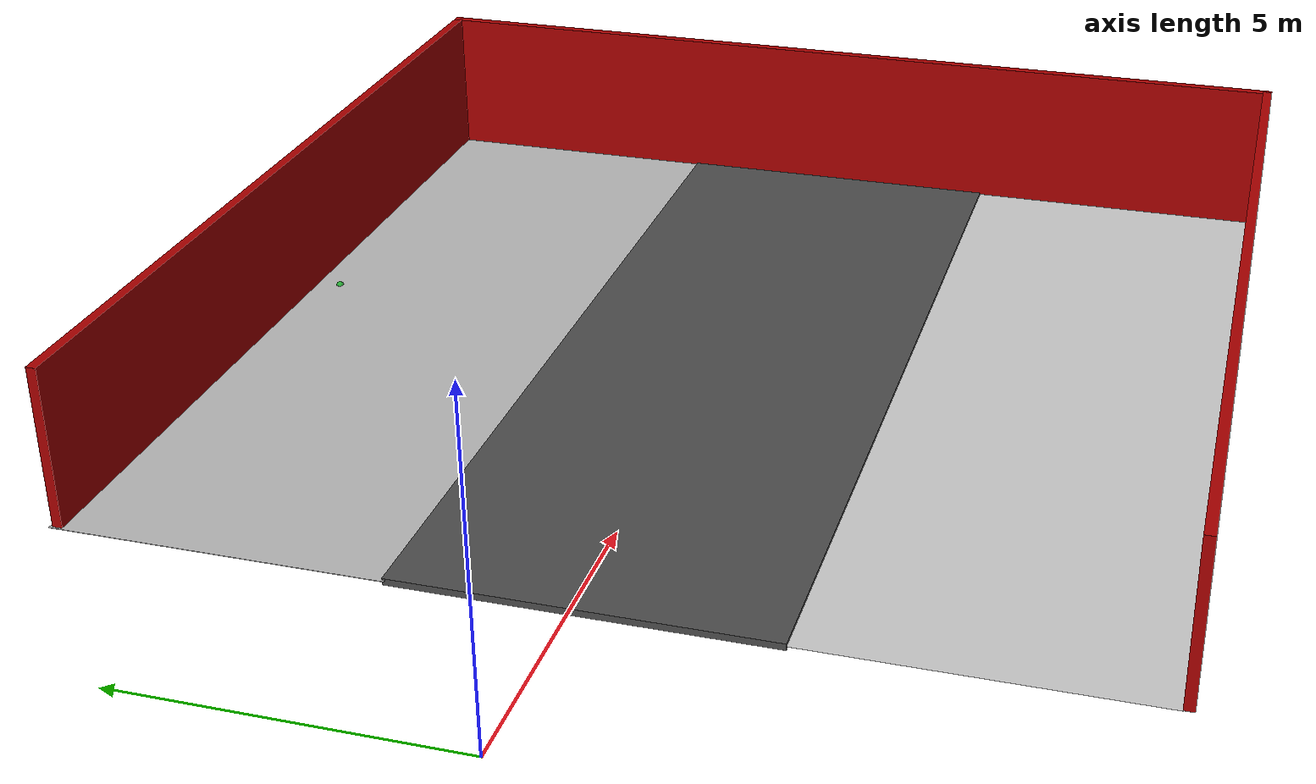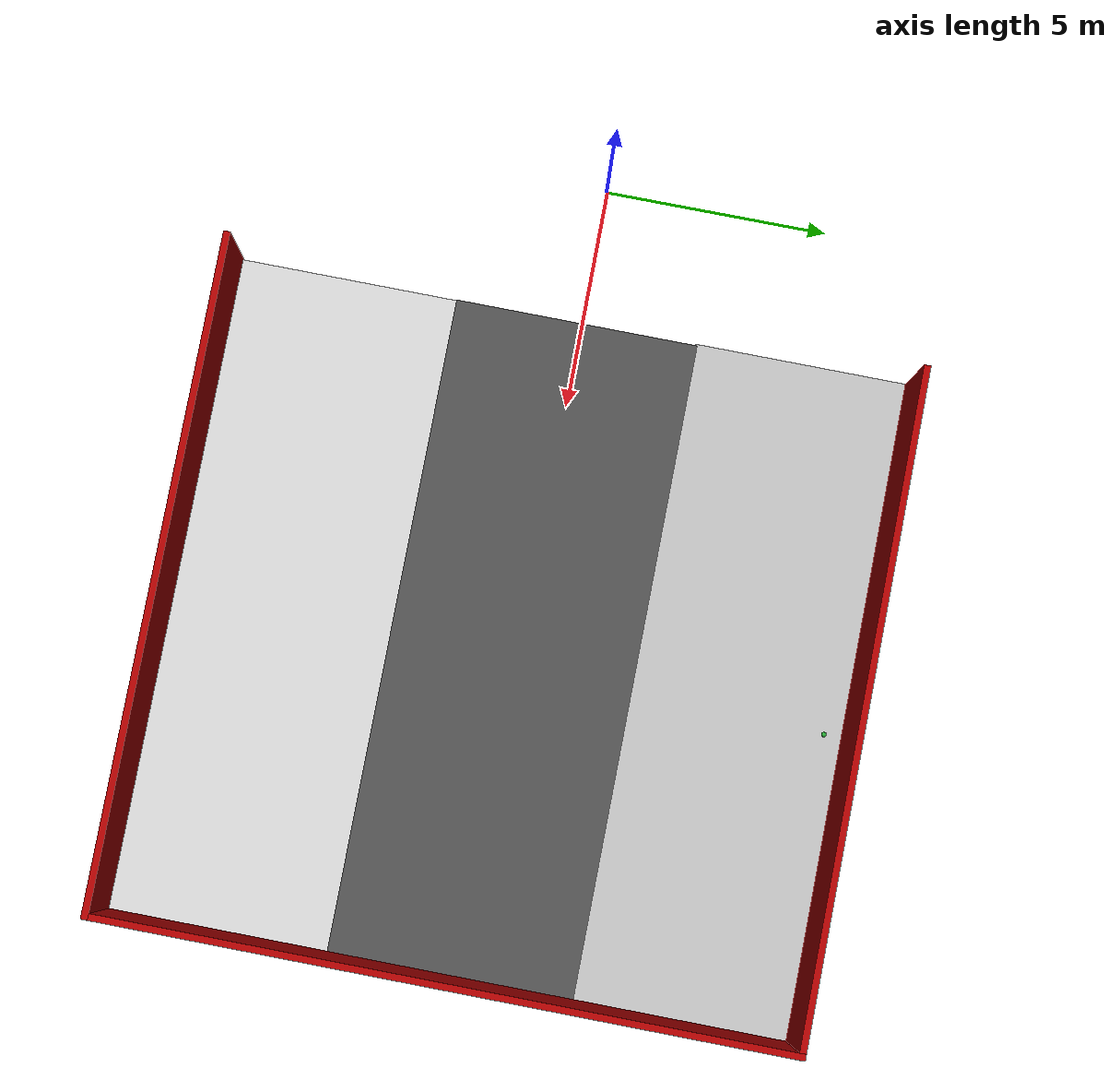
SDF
<sdf version="1.7">
 <world name="default">
  <light name="sun" type="directional">
   <pose>0 0 10 0 -0 0</pose>
   <diffuse>0.8 0.8 0.8 1</diffuse>
   <specular>0.2 0.2 0.2 1</specular>
   <attenuation>
    <range>1000</range>
    <constant>0.9</constant>
    <linear>0.01</linear>
    <quadratic>0.001</quadratic>
   </attenuation>
   <direction>-0.5 0.1 -0.9</direction>
   <spot><inner_angle>0</inner_angle><outer_angle>0</outer_angle><falloff>0</falloff></spot>
  </light>
  <gravity>0 0 -9.8</gravity>
  <magnetic_field>6e-06 2.3e-05 -4.2e-05</magnetic_field>
  <atmosphere type="adiabatic"/>
  <physics type="ode">
   <max_step_size>0.001</max_step_size>
   <real_time_factor>1</real_time_factor>
   <real_time_update_rate>1000</real_time_update_rate>
  </physics>
  <scene><ambient>0.4 0.4 0.4 1</ambient><background>0.7 0.7 0.7 1</background><shadows>1</shadows></scene>
  <spherical_coordinates>
   <surface_model>EARTH_WGS84</surface_model>
   <latitude_deg>0</latitude_deg>
   <longitude_deg>0</longitude_deg>
   <elevation>0</elevation>
   <heading_deg>0</heading_deg>
  </spherical_coordinates>
  <model name="asphalt_plane">
   <static>1</static>
   <link name="link">
    <collision name="collision"><geometry><box><size>14.9457 5.52228 0.1</size></box></geometry></collision>
    <visual name="visual">
     <cast_shadows>0</cast_shadows>
     <geometry><box><size>14.9457 5.52228 0.1</size></box></geometry>
     <material>
      <script>
       <uri>model://asphalt_plane/materials/scripts</uri>
       <uri>model://asphalt_plane/materials/textures</uri>
       <name>vrc/asphalt</name>
      </script>
     </material>
    </visual>
   </link>
   <pose>10.5518 -0.123569 -0.026377 0 -0 0</pose>
  </model>
  <model name="parking_lot">
   <static>1</static>
   <link name="link">
    <collision name="collision">
     <geometry><plane><normal>0 0 1</normal><size>15 5</size></plane></geometry>
     <surface><friction><ode><mu>100</mu><mu2>50</mu2></ode></friction></surface>
    </collision>
    <visual name="visual">
     <cast_shadows>0</cast_shadows>
     <geometry><plane><normal>0 0 1</normal><size>15 5</size></plane></geometry>
     <material>
      <script>
       <uri>model://parking_lot/materials/scripts</uri>
       <uri>model://parking_lot/materials/textures/</uri>
       <name>parking_lot/Image</name>
      </script>
     </material>
    </visual>
   </link>
   <pose>10.5861 -5.31981 0 0 -0 0</pose>
  </model>
  <model name="parking_lot_0">
   <static>1</static>
   <link name="link">
    <collision name="collision">
     <geometry><plane><normal>0 0 1</normal><size>15 5</size></plane></geometry>
     <surface><friction><ode><mu>100</mu><mu2>50</mu2></ode></friction></surface>
    </collision>
    <visual name="visual">
     <cast_shadows>0</cast_shadows>
     <geometry><plane><normal>0 0 1</normal><size>15 5</size></plane></geometry>
     <material>
      <script>
       <uri>model://parking_lot/materials/scripts</uri>
       <uri>model://parking_lot/materials/textures/</uri>
       <name>parking_lot/Image</name>
      </script>
     </material>
    </visual>
   </link>
   <pose>10.5402 5.08892 0 0 -0 0</pose>
  </model>
  <model name="redwalls">
   <pose>9.03331 -0.20329 0 0 -0 0</pose>
   <link name="Wall_0">
    <collision name="Wall_0_Collision">
     <geometry><box><size>15 0.15 2.5</size></box></geometry>
     <pose>0 0 1.25 0 -0 0</pose>
    </collision>
    <visual name="Wall_0_Visual">
     <pose>0 0 1.25 0 -0 0</pose>
     <geometry><box><size>15 0.15 2.5</size></box></geometry>
     <material>
      <script><uri>file://media/materials/scripts/gazebo.material</uri><name>Gazebo/Grey</name></script>
      <ambient>0.666667 0 0 1</ambient>
     </material>
     <meta><layer>0</layer></meta>
    </visual>
    <pose>1.53329 -7.675 0 0 -0 0</pose>
   </link>
   <link name="Wall_4">
    <collision name="Wall_4_Collision">
     <geometry><box><size>15.5 0.15 2.5</size></box></geometry>
     <pose>0 0 1.25 0 -0 0</pose>
    </collision>
    <visual name="Wall_4_Visual">
     <pose>0 0 1.25 0 -0 0</pose>
     <geometry><box><size>15.5 0.15 2.5</size></box></geometry>
     <material>
      <script><uri>file://media/materials/scripts/gazebo.material</uri><name>Gazebo/Grey</name></script>
      <ambient>0.666667 0 0 1</ambient>
     </material>
     <meta><layer>0</layer></meta>
    </visual>
    <pose>8.95829 0 0 0 -0 1.5708</pose>
   </link>
   <link name="Wall_5">
    <collision name="Wall_5_Collision">
     <geometry><box><size>15 0.15 2.5</size></box></geometry>
     <pose>0 0 1.25 0 -0 0</pose>
    </collision>
    <visual name="Wall_5_Visual">
     <pose>0 0 1.25 0 -0 0</pose>
     <geometry><box><size>15 0.15 2.5</size></box></geometry>
     <material>
      <script><uri>file://media/materials/scripts/gazebo.material</uri><name>Gazebo/Grey</name></script>
      <ambient>0.666667 0 0 1</ambient>
     </material>
     <meta><layer>0</layer></meta>
    </visual>
    <pose>1.53329 7.675 0 0 -0 3.14159</pose>
   </link>
   <static>1</static>
  </model>
  <model name="green_marker">
   <link name="link">
    <inertial>
     <mass>1</mass>
     <inertia><ixx>0.1</ixx><ixy>0</ixy><ixz>0</ixz><iyy>0.1</iyy><iyz>0</iyz><izz>0.1</izz></inertia>
    </inertial>
    <visual name="visual">
     <geometry><sphere><radius>0.06</radius></sphere></geometry>
     <material>
      <script><name>Gazebo/Green</name><uri>file://media/materials/scripts/gazebo.material</uri></script>
      <shader type="pixel"><normal_map>__default__</normal_map></shader>
      <ambient>0 1 0 1</ambient>
      <diffuse>0 1 0 1</diffuse>
      <specular>0.01 0.01 0.01 1</specular>
      <emissive>0 0 0 1</emissive>
     </material>
    </visual>
    <collision name="collision">
     <geometry><sphere><radius>0.001</radius></sphere></geometry>
     <surface>
      <friction>
       <ode><mu>1</mu><mu2>1</mu2><fdir1>0 0 0</fdir1><slip1>0</slip1><slip2>0</slip2></ode>
       <torsional>
        <coefficient>1</coefficient>
        <patch_radius>0</patch_radius>
        <surface_radius>0</surface_radius>
        <use_patch_radius>1</use_patch_radius>
        <ode><slip>0</slip></ode>
       </torsional>
      </friction>
      <bounce><restitution_coefficient>0</restitution_coefficient><threshold>1e+06</threshold></bounce>
      <contact>
       <collide_without_contact>0</collide_without_contact>
       <collide_without_contact_bitmask>1</collide_without_contact_bitmask>
       <collide_bitmask>1</collide_bitmask>
       <ode>
        <soft_cfm>0</soft_cfm>
        <soft_erp>0.2</soft_erp>
        <kp>1e+13</kp>
        <kd>1</kd>
        <max_vel>0.01</max_vel>
        <min_depth>0</min_depth>
       </ode>
       <bullet>
        <split_impulse>1</split_impulse>
        <split_impulse_penetration_threshold>-0.01</split_impulse_penetration_threshold>
        <soft_cfm>0</soft_cfm>
        <soft_erp>0.2</soft_erp>
        <kp>1e+13</kp>
        <kd>1</kd>
       </bullet>
      </contact>
     </surface>
    </collision>
   </link>
   <static>0</static>
   <pose>11.1383 7.01546 0.001 0 -0 0</pose>
  </model>
 </world>
</sdf>
